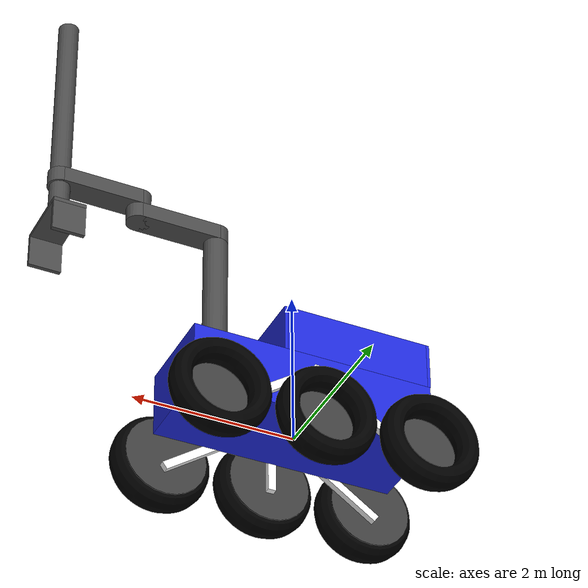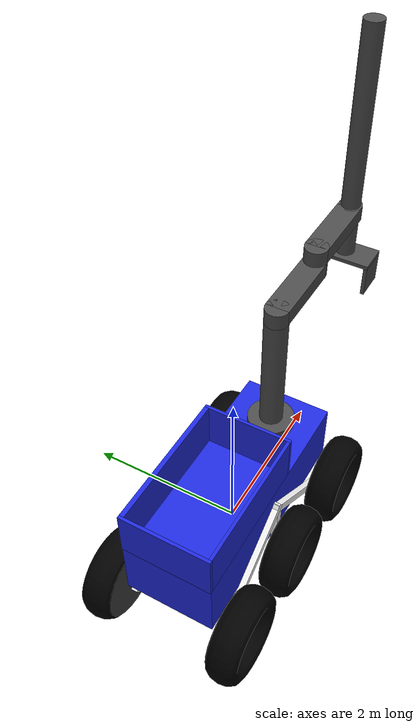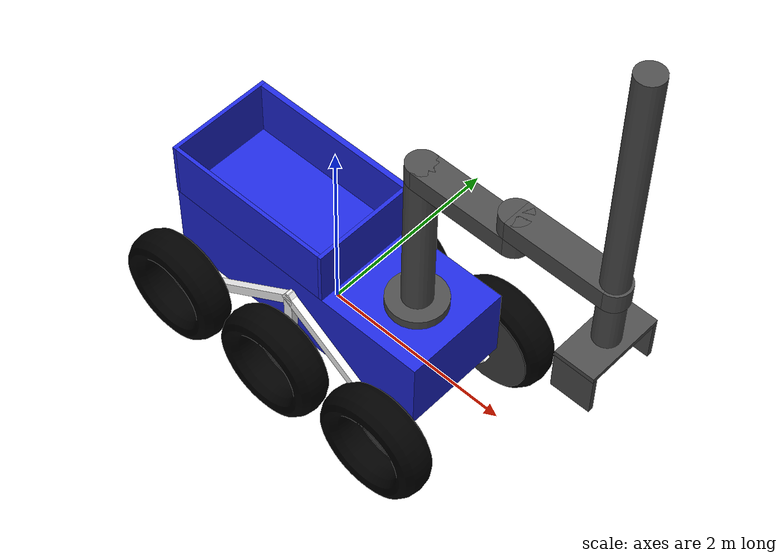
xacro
<?xml version="1.0"?>

<robot name="rover" xmlns:xacro="http://wiki.ros.org/xacro">

  <!--  includes  -->
  <xacro:include filename="$(find robot_rover)/urdf/utils/utils.urdf.xacro"/>
  <xacro:include filename="$(find robot_rover)/urdf/base/robot_base.urdf.xacro"/>
  <xacro:include filename="$(find robot_rover)/urdf/wheels/rover_wheel.urdf.xacro"/>
  <xacro:include filename="$(find robot_rover)/urdf/arm/scara.urdf.xacro"/>
  <xacro:include filename="$(find robot_rover)/urdf/arm/gripper.urdf.xacro"/>
  <xacro:include filename="$(find robot_rover)/urdf/sensors/camera.urdf.xacro"/>
  <xacro:include filename="$(find robot_rover)/urdf/sensors/imu_sensor.urdf.xacro"/>

  <!-- Propiedades -->
  <xacro:property name="front_camera_offset_x" value="1.55000"/>
  <xacro:property name="front_camera_offset_y" value="0.00000"/>
  <xacro:property name="front_camera_offset_z" value="0.50000"/>
  <xacro:property name="arm_camera_offset_x" value="0.00000"/>
  <xacro:property name="arm_camera_offset_y" value="0.00000"/>
  <xacro:property name="arm_camera_offset_z" value="-0.57500"/>

  <!--  argumentos  -->
  <xacro:arg name="robot_ns" default=""/>
  <xacro:arg name="prefix" default=""/>

  <!--  Robot Parts  -->

  <!--  Utils  -->
  <xacro:utils/>

  <!--  Base  -->
  <xacro:robot_base/>

  <!--  Wheels  -->
  <xacro:rover_wheel parent="base_link">
  </xacro:rover_wheel>

  <!--  Arm  -->
  <xacro:scara parent="base_link">
  </xacro:scara>
  <xacro:gripper parent="arm_link3_link_T">
  </xacro:gripper>

  <!--  sensores  -->
  <xacro:camera node_name="front_camera" frame_prefix="front_camera" parent="base_link">
    <origin xyz="${front_camera_offset_x} ${front_camera_offset_y} ${front_camera_offset_z}" rpy="0 0 1.57080"/>
  </xacro:camera>

  <xacro:camera node_name="arm_camera" frame_prefix="arm_camera" parent="arm_base_fingers_link_R" >
    <origin xyz="${arm_camera_offset_x} ${arm_camera_offset_y} ${arm_camera_offset_z}" rpy="0 1.57080 0"/>
  </xacro:camera>

  <xacro:imu_sensor parent="base_link">
    <origin xyz="0.0 0.0 0.0" rpy="0 0 0"/>
  </xacro:imu_sensor>

  <!--  Gazebo ROS control plugins  -->
  <xacro:include filename="$(find robot_rover)/urdf/ros2_control.urdf.xacro"/>
  <xacro:arg name="config_controllers" default="$(find robot_rover)/config/rover_controllers.yaml"/>
  <xacro:arg name="update_rate" default="20"/>
  <xacro:ros2_control/>

</robot>

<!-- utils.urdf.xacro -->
<robot name="rover" xmlns:xacro="http://wiki.ros.org/xacro">
  <xacro:macro name="utils">

    <material name="Material">
      <color rgba="0.00000 0.00000 0.00000 1.00000"/>
    </material>
    <material name="Material.black">
      <color rgba="0.00000 0.00000 0.00000 1.00000"/>
    </material>
    <material name="Material.white">
      <color rgba="1.00000 1.00000 1.00000 1.00000"/>
    </material>
    <material name="Material.gray">
      <color rgba="0.29804 0.29804 0.29804 1.00000"/>
    </material>
    <material name="Material.blue">
      <color rgba="0.12353 0.16275 0.86667 1.00000"/>
    </material>
    <material name="Material.gray2">
      <color rgba="0.24706 0.24706 0.24706 1.00000"/>
    </material>

  </xacro:macro>
</robot>

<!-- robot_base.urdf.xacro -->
<robot name="rover" xmlns:xacro="http://wiki.ros.org/xacro">
  <xacro:macro name="robot_base">

    <joint name="18_wall1_joint" type="fixed">
      <origin rpy="0.00000 0.00000 0.00000" xyz="0.35000 0.00000 0.90000"/>
      <parent link="base_link"/>
      <child link="wall1_link"/>
    </joint>
    <joint name="18_wall2_joint" type="fixed">
      <origin rpy="0.00000 0.00000 0.00000" xyz="-0.57000 -0.54500 0.90000"/>
      <parent link="base_link"/>
      <child link="wall2_link"/>
    </joint>
    <joint name="18_wall3_joint" type="fixed">
      <origin rpy="0.00000 0.00000 0.00000" xyz="-1.48000 0.00000 0.90000"/>
      <parent link="base_link"/>
      <child link="wall3_link"/>
    </joint>
    <joint name="18_wall4_joint" type="fixed">
      <origin rpy="0.00000 0.00000 0.00000" xyz="-0.57000 0.54500 0.90000"/>
      <parent link="base_link"/>
      <child link="wall4_link"/>
    </joint>
    <joint name="base_link_joint" type="fixed">
      <origin rpy="0.00000 0.00000 0.00000" xyz="0.00000 0.00000 0.20000"/>
      <parent link="base_footprint"/>
      <child link="base_link"/>
    </joint>
    <link name="base_footprint"/>
    <link name="base_link">
      <collision name="base_collision">
        <origin rpy="0.00000 0.00000 0.00000" xyz="0.00000 0.00000 0.20000"/>
        <geometry>
          <box size="3.00000 1.15000 0.80000"/>
        </geometry>
      </collision>
      <inertial>
        <inertia ixx="15.48333" ixy="0.00000" ixz="0.00000" iyy="66.66667" iyz="0.00000" izz="68.81667"/>
        <origin rpy="0.00000 0.00000 0.00000" xyz="0.00000 0.00000 0.10000"/>
        <mass value="80.00000"/>
      </inertial>
      <visual name="base">
        <origin rpy="0.00000 0.00000 0.00000" xyz="0.00000 0.00000 0.20000"/>
        <material name="Material.blue"/>
        <geometry>
          <box size="3.00000 1.15000 0.80000"/>
        </geometry>
      </visual>
    </link>
    <link name="wall1_link">
      <collision name="wall1_collision">
        <origin rpy="0.00000 0.00000 0.00000" xyz="-0.00000 0.00000 -0.00000"/>
        <geometry>
          <box size="0.04000 1.15000 0.60000"/>
        </geometry>
      </collision>
      <inertial>
        <inertia ixx="0.42062" ixy="0.00000" ixz="0.00000" iyy="0.09040" iyz="0.00000" izz="0.33102"/>
        <origin rpy="0.00000 0.00000 0.00000" xyz="-0.00000 0.00000 -0.00000"/>
        <mass value="3.00000"/>
      </inertial>
      <visual name="wall1">
        <origin rpy="0.00000 0.00000 0.00000" xyz="0.00000 0.00000 -0.00000"/>
        <material name="Material.blue"/>
        <geometry>
          <box size="0.04000 1.15000 0.60000"/>
        </geometry>
      </visual>
    </link>
    <link name="wall2_link">
      <collision name="wall2_collision">
        <origin rpy="0.00000 0.00000 0.00000" xyz="0.00000 -0.01000 -0.00000"/>
        <geometry>
          <box size="1.80000 0.04000 0.60000"/>
        </geometry>
      </collision>
      <inertial>
        <inertia ixx="0.15067" ixy="0.00000" ixz="0.00000" iyy="1.48504" iyz="0.00000" izz="1.33571"/>
        <origin rpy="0.00000 0.00000 0.00000" xyz="0.00000 -0.01000 -0.00000"/>
        <mass value="5.00000"/>
      </inertial>
      <visual name="wall2">
        <origin rpy="0.00000 0.00000 0.00000" xyz="0.00000 -0.01000 -0.00000"/>
        <material name="Material.blue"/>
        <geometry>
          <box size="1.80000 0.04000 0.60000"/>
        </geometry>
      </visual>
    </link>
    <link name="wall3_link">
      <collision name="wall3_collision">
        <origin rpy="0.00000 0.00000 0.00000" xyz="-0.01000 0.00000 -0.00000"/>
        <geometry>
          <box size="0.04000 1.15000 0.60000"/>
        </geometry>
      </collision>
      <inertial>
        <inertia ixx="0.42062" ixy="0.00000" ixz="0.00000" iyy="0.09040" iyz="0.00000" izz="0.33102"/>
        <origin rpy="0.00000 0.00000 0.00000" xyz="-0.01000 0.00000 -0.00000"/>
        <mass value="3.00000"/>
      </inertial>
      <visual name="wall3">
        <origin rpy="0.00000 0.00000 0.00000" xyz="-0.01000 0.00000 -0.00000"/>
        <material name="Material.blue"/>
        <geometry>
          <box size="0.04000 1.15000 0.60000"/>
        </geometry>
      </visual>
    </link>
    <link name="wall4_link">
      <collision name="wall4_collision">
        <origin rpy="0.00000 0.00000 0.00000" xyz="0.00000 -0.00000 -0.00000"/>
        <geometry>
          <box size="1.80000 0.06000 0.60000"/>
        </geometry>
      </collision>
      <inertial>
        <inertia ixx="0.15150" ixy="0.00000" ixz="0.00000" iyy="1.48504" iyz="0.00000" izz="1.33654"/>
        <origin rpy="0.00000 0.00000 0.00000" xyz="0.00000 -0.00000 -0.00000"/>
        <mass value="5.00000"/>
      </inertial>
      <visual name="wall4">
        <origin rpy="0.00000 0.00000 0.00000" xyz="0.00000 -0.00000 -0.00000"/>
        <material name="Material.blue"/>
        <geometry>
          <box size="1.80000 0.06000 0.60000"/>
        </geometry>
      </visual>
    </link>

  </xacro:macro>
</robot>

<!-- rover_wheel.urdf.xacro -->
<robot name="rover" xmlns:xacro="http://wiki.ros.org/xacro">
  <xacro:macro name="rover_wheel" params="parent">

    <joint name="12_link_wheel_front_right_joint" type="fixed">
      <origin rpy="0.00000 0.61087 0.00000" xyz="0.65000 -0.61000 -0.10000"/>
      <parent link="${parent}"/>
      <child link="link_wheel_front_right_link"/>
    </joint>
    <joint name="13_link_wheel_front_left_link_joint" type="fixed">
      <origin rpy="0.00000 0.61087 0.00000" xyz="0.65000 0.61000 -0.10000"/>
      <parent link="${parent}"/>
      <child link="link_wheel_front_left_link"/>
    </joint>
    <joint name="14_link_wheel_middle_right_joint" type="fixed">
      <origin rpy="1.57080 1.57080 0.00000" xyz="0.00000 -0.61000 -0.10000"/>
      <parent link="${parent}"/>
      <child link="link_wheel_middle_right_link"/>
    </joint>
    <joint name="15_link_wheel_middle_left_joint" type="fixed">
      <origin rpy="-1.57080 1.57080 0.00000" xyz="0.00000 0.61000 -0.10000"/>
      <parent link="${parent}"/>
      <child link="link_wheel_middle_left_link"/>
    </joint>
    <joint name="16_link_wheel_back_right_joint" type="fixed">
      <origin rpy="0.00000 -0.61087 0.00000" xyz="-0.65000 -0.61000 -0.10000"/>
      <parent link="${parent}"/>
      <child link="link_wheel_back_right_link"/>
    </joint>
    <joint name="17_link_wheel_back_left_joint" type="fixed">
      <origin rpy="0.00000 -0.61087 0.00000" xyz="-0.65000 0.61000 -0.10000"/>
      <parent link="${parent}"/>
      <child link="link_wheel_back_left_link"/>
    </joint>
    <joint name="21_wheel_cover_front_right_joint" type="continuous">
      <limit lower="0.00000" upper="0.00000" effort="5000.00000" velocity="100.00000"/>
      <origin rpy="-1.57080 0.95993 0.00000" xyz="0.70452 -0.06500 0.12708"/>
      <parent link="link_wheel_front_right_link"/>
      <child link="wheel_cover_front_right_link"/>
      <axis xyz="0.00000 0.00000 1.00000"/>
    </joint>
    <joint name="22_wheel_front_right_joint" type="fixed">
      <origin rpy="-3.14159 -0.00000 -1.57080" xyz="0.00000 -0.00000 -0.17500"/>
      <parent link="wheel_cover_front_right_link"/>
      <child link="wheel_front_right_link"/>
    </joint>
    <joint name="31_wheel_cover_front_left_joint" type="continuous">
      <limit lower="0.00000" upper="0.00000" effort="5000.00000" velocity="100.00000"/>
      <origin rpy="-1.57080 0.95993 0.00000" xyz="0.70452 0.06500 0.12708"/>
      <parent link="link_wheel_front_left_link"/>
      <child link="wheel_cover_front_left_link"/>
      <axis xyz="0.00000 0.00000 1.00000"/>
    </joint>
    <joint name="32_wheel_front_left_joint" type="fixed">
      <origin rpy="-3.14159 -0.00000 -1.57080" xyz="0.00000 0.00000 0.17500"/>
      <parent link="wheel_cover_front_left_link"/>
      <child link="wheel_front_left_link"/>
    </joint>
    <joint name="41_wheel_cover_middle_right_joint" type="continuous">
      <limit lower="0.00000" upper="0.00000" effort="5000.00000" velocity="100.00000"/>
      <origin rpy="-3.14159 -0.00000 0.00000" xyz="0.30000 0.00000 0.06500"/>
      <parent link="link_wheel_middle_right_link"/>
      <child link="wheel_cover_middle_right_link"/>
      <axis xyz="0.00000 0.00000 1.00000"/>
    </joint>
    <joint name="42_wheel_middle_right_joint" type="fixed">
      <origin rpy="-3.14159 -0.00000 -1.57080" xyz="-0.00000 -0.00000 -0.17500"/>
      <parent link="wheel_cover_middle_right_link"/>
      <child link="wheel_middle_right_link"/>
    </joint>
    <joint name="51_wheel_cover_middle_left_joint" type="continuous">
      <limit lower="0.00000" upper="0.00000" effort="5000.00000" velocity="100.00000"/>
      <origin rpy="0.00000 0.00000 0.00000" xyz="0.30000 0.00000 0.06500"/>
      <parent link="link_wheel_middle_left_link"/>
      <child link="wheel_cover_middle_left_link"/>
      <axis xyz="0.00000 0.00000 1.00000"/>
    </joint>
    <joint name="52_wheel_middle_left_joint" type="fixed">
      <origin rpy="-3.14159 -0.00000 -1.57080" xyz="-0.00000 0.00000 0.17500"/>
      <parent link="wheel_cover_middle_left_link"/>
      <child link="wheel_middle_left_link"/>
    </joint>
    <joint name="61_wheel_cover_back_right_joint" type="continuous">
      <limit lower="0.00000" upper="0.00000" effort="5000.00000" velocity="100.00000"/>
      <origin rpy="1.57080 0.95993 3.14159" xyz="-0.70452 -0.06500 0.12708"/>
      <parent link="link_wheel_back_right_link"/>
      <child link="wheel_cover_back_right_link"/>
      <axis xyz="0.00000 0.00000 1.00000"/>
    </joint>
    <joint name="62_wheel_back_right_joint" type="fixed">
      <origin rpy="-3.14159 -0.00000 -1.57080" xyz="-0.00000 0.00000 -0.17500"/>
      <parent link="wheel_cover_back_right_link"/>
      <child link="wheel_back_right_link"/>
    </joint>
    <joint name="71_wheel_cover_back_left_joint" type="continuous">
      <limit lower="0.00000" upper="0.00000" effort="5000.00000" velocity="100.00000"/>
      <origin rpy="1.57080 0.95993 -3.14159" xyz="-0.70452 0.06500 0.12708"/>
      <parent link="link_wheel_back_left_link"/>
      <child link="wheel_cover_back_left_link"/>
      <axis xyz="0.00000 0.00000 1.00000"/>
    </joint>
    <joint name="72_wheel_back_left_joint" type="fixed">
      <origin rpy="-3.14159 -0.00000 -1.57080" xyz="0.00000 -0.00000 0.17500"/>
      <parent link="wheel_cover_back_left_link"/>
      <child link="wheel_back_left_link"/>
    </joint>
    <link name="link_wheel_back_left_link">
      <collision name="link_wheel_back_left_collision">
        <origin rpy="0.00000 0.00000 0.00000" xyz="0.00000 -0.00000 -0.00000"/>
        <geometry>
          <box size="1.70000 0.08000 0.10000"/>
        </geometry>
      </collision>
      <inertial>
        <inertia ixx="0.48195" ixy="0.00000" ixz="-0.67658" iyy="1.45000" iyz="0.00000" izz="0.97445"/>
        <origin rpy="0.00000 0.00000 0.00000" xyz="0.00000 -0.00000 -0.00000"/>
        <mass value="6.00000"/>
      </inertial>
      <visual name="link_wheel_back_left">
        <origin rpy="0.00000 0.00000 0.00000" xyz="-0.00000 0.00000 -0.00000"/>
        <material name="Material.white"/>
        <geometry>
          <box size="1.70000 0.08000 0.10000"/>
        </geometry>
      </visual>
    </link>
    <link name="link_wheel_back_right_link">
      <collision name="link_wheel_back_right_collision">
        <origin rpy="0.00000 0.00000 0.00000" xyz="0.00000 0.00000 -0.00000"/>
        <geometry>
          <box size="1.70000 0.08000 0.10000"/>
        </geometry>
      </collision>
      <inertial>
        <inertia ixx="0.48195" ixy="0.00000" ixz="-0.67658" iyy="1.45000" iyz="0.00000" izz="0.97445"/>
        <origin rpy="0.00000 0.00000 0.00000" xyz="0.00000 0.00000 -0.00000"/>
        <mass value="6.00000"/>
      </inertial>
      <visual name="link_wheel_back_right">
        <origin rpy="0.00000 0.00000 0.00000" xyz="-0.00000 -0.00000 -0.00000"/>
        <material name="Material.white"/>
        <geometry>
          <box size="1.70000 0.08000 0.10000"/>
        </geometry>
      </visual>
    </link>
    <link name="link_wheel_front_left_link">
      <collision name="link_wheel_front_left_collision">
        <origin rpy="0.00000 -0.00000 0.00000" xyz="-0.00000 -0.00000 -0.00000"/>
        <geometry>
          <box size="1.70000 0.08000 0.10000"/>
        </geometry>
      </collision>
      <inertial>
        <inertia ixx="0.48195" ixy="0.00000" ixz="0.67658" iyy="1.45000" iyz="0.00000" izz="0.97445"/>
        <origin rpy="0.00000 0.00000 0.00000" xyz="-0.00000 -0.00000 -0.00000"/>
        <mass value="6.00000"/>
      </inertial>
      <visual name="link_wheel_front_left">
        <origin rpy="0.00000 -0.00000 0.00000" xyz="0.00000 0.00000 -0.00000"/>
        <material name="Material.white"/>
        <geometry>
          <box size="1.70000 0.08000 0.10000"/>
        </geometry>
      </visual>
    </link>
    <link name="link_wheel_front_right_link">
      <collision name="link_wheel_front_right_collision">
        <origin rpy="0.00000 -0.00000 0.00000" xyz="-0.00000 0.00000 -0.00000"/>
        <geometry>
          <box size="1.70000 0.08000 0.10000"/>
        </geometry>
      </collision>
      <inertial>
        <inertia ixx="0.48195" ixy="0.00000" ixz="0.67658" iyy="1.45000" iyz="0.00000" izz="0.97445"/>
        <origin rpy="0.00000 0.00000 0.00000" xyz="-0.00000 0.00000 -0.00000"/>
        <mass value="6.00000"/>
      </inertial>
      <visual name="link_wheel_front_right">
        <origin rpy="0.00000 -0.00000 0.00000" xyz="0.00000 -0.00000 -0.00000"/>
        <material name="Material.white"/>
        <geometry>
          <box size="1.70000 0.08000 0.10000"/>
        </geometry>
      </visual>
    </link>
    <link name="link_wheel_middle_left_link">
      <collision name="link_wheel_middle_left_collision">
        <origin rpy="1.57080 0.00000 -0.00000" xyz="0.00000 0.00000 0.00000"/>
        <geometry>
          <box size="0.90000 0.08000 0.10000"/>
        </geometry>
      </collision>
      <inertial>
        <inertia ixx="0.20410" ixy="0.00000" ixz="0.00000" iyy="0.20500" iyz="0.00000" izz="0.00410"/>
        <origin rpy="0.00000 0.00000 0.00000" xyz="0.00000 0.00000 0.00000"/>
        <mass value="3.00000"/>
      </inertial>
      <visual name="link_wheel_middle_left">
        <origin rpy="1.57080 0.00000 0.00000" xyz="0.00000 0.00000 0.00000"/>
        <material name="Material.white"/>
        <geometry>
          <box size="0.90000 0.08000 0.10000"/>
        </geometry>
      </visual>
    </link>
    <link name="link_wheel_middle_right_link">
      <collision name="link_wheel_middle_right_collision">
        <origin rpy="-1.57080 -0.00000 0.00000" xyz="0.00000 -0.00000 0.00000"/>
        <geometry>
          <box size="0.90000 0.08000 0.10000"/>
        </geometry>
      </collision>
      <inertial>
        <inertia ixx="0.20410" ixy="0.00000" ixz="0.00000" iyy="0.20500" iyz="0.00000" izz="0.00410"/>
        <origin rpy="0.00000 0.00000 0.00000" xyz="0.00000 0.00000 0.00000"/>
        <mass value="3.00000"/>
      </inertial>
      <visual name="link_wheel_middle_right">
        <origin rpy="-1.57080 0.00000 0.00000" xyz="0.00000 0.00000 0.00000"/>
        <material name="Material.white"/>
        <geometry>
          <box size="0.90000 0.08000 0.10000"/>
        </geometry>
      </visual>
    </link>
    <link name="wheel_back_left_link">
      <collision name="wheel_back_left_collision">
        <origin rpy="0.00000 0.00000 0.00000" xyz="-0.00000 0.00000 -0.00000"/>
        <geometry>
          <mesh filename="file://$(find robot_rover)/meshes/dae/Torus.010.dae" scale="0.48000 0.48000 0.80000"/>
        </geometry>
        <surface>
          <friction>
            <ode>
              <mu>1.00000</mu>
              <mu2>1.00000</mu2>
              <fdir1>0.00000 0.00000 1.00000</fdir1>
              <slip1>0.0005</slip1>
              <slip2>0.0005</slip2>
            </ode>
          </friction>
        </surface>
      </collision>
      <inertial>
        <inertia ixx="0.46164" ixy="0.00000" ixz="0.00000" iyy="0.84452" iyz="0.00000" izz="0.46164"/>
        <origin rpy="0.00000 0.00000 0.00000" xyz="0.00000 0.00000 0.00000"/>
        <mass value="5.00000"/>
      </inertial>
      <visual name="wheel_back_left">
        <origin rpy="0.00000 0.00000 0.00000" xyz="0.00000 0.00000 0.00000"/>
        <material name="Material.black"/>
        <geometry>
          <mesh filename="file://$(find robot_rover)/meshes/dae/Torus.010.dae" scale="0.48000 0.48000 0.80000"/>
        </geometry>
      </visual>
    </link>
    <link name="wheel_back_right_link">
      <collision name="wheel_back_right_collision">
        <origin rpy="0.00000 0.00000 -0.00000" xyz="0.00000 -0.00000 0.00000"/>
        <geometry>
          <mesh filename="file://$(find robot_rover)/meshes/dae/Torus.006.dae" scale="0.48000 0.48000 0.80000"/>
        </geometry>
        <surface>
          <friction>
            <ode>
              <mu>1.00000</mu>
              <mu2>1.00000</mu2>
              <fdir1>0.00000 0.00000 1.00000</fdir1>
              <slip1>0.0005</slip1>
              <slip2>0.0005</slip2>
            </ode>
          </friction>
        </surface>
      </collision>
      <inertial>
        <inertia ixx="0.46164" ixy="0.00000" ixz="0.00000" iyy="0.84452" iyz="0.00000" izz="0.46164"/>
        <origin rpy="0.00000 0.00000 0.00000" xyz="0.00000 -0.00000 0.00000"/>
        <mass value="5.00000"/>
      </inertial>
      <visual name="wheel_back_right">
        <origin rpy="0.00000 0.00000 0.00000" xyz="0.00000 0.00000 0.00000"/>
        <material name="Material.black"/>
        <geometry>
          <mesh filename="file://$(find robot_rover)/meshes/dae/Torus.006.dae" scale="0.48000 0.48000 0.80000"/>
        </geometry>
      </visual>
    </link>
    <link name="wheel_cover_back_left_link">
      <collision name="wheel_cover_back_left_collision">
        <origin rpy="-0.00000 0.00000 0.00000" xyz="0.00000 0.00000 -0.00000"/>
        <geometry>
          <cylinder radius="0.50000" length="0.05000"/>
        </geometry>
      </collision>
      <inertial>
        <inertia ixx="0.01881" ixy="0.00000" ixz="0.00000" iyy="0.03750" iyz="0.00000" izz="0.01881"/>
        <origin rpy="0.00000 0.00000 0.00000" xyz="0.00000 0.00000 -0.00000"/>
        <mass value="0.30000"/>
      </inertial>
      <visual name="wheel_cover_back_left">
        <origin rpy="-0.00000 0.00000 0.00000" xyz="-0.00000 0.00000 -0.00000"/>
        <material name="Material.gray2"/>
        <geometry>
          <cylinder radius="0.50000" length="0.05000"/>
        </geometry>
      </visual>
    </link>
    <link name="wheel_cover_back_right_link">
      <collision name="wheel_cover_back_right_collision">
        <origin rpy="-0.00000 0.00000 0.00000" xyz="-0.00000 -0.00000 0.00000"/>
        <geometry>
          <cylinder radius="0.50000" length="0.05000"/>
        </geometry>
      </collision>
      <inertial>
        <inertia ixx="0.01881" ixy="0.00000" ixz="0.00000" iyy="0.03750" iyz="0.00000" izz="0.01881"/>
        <origin rpy="0.00000 0.00000 0.00000" xyz="-0.00000 -0.00000 0.00000"/>
        <mass value="0.30000"/>
      </inertial>
      <visual name="wheel_cover_back_right">
        <origin rpy="-0.00000 0.00000 0.00000" xyz="0.00000 0.00000 0.00000"/>
        <material name="Material.gray2"/>
        <geometry>
          <cylinder radius="0.50000" length="0.05000"/>
        </geometry>
      </visual>
    </link>
    <link name="wheel_cover_front_left_link">
      <collision name="wheel_cover_front_left_collision">
        <origin rpy="-0.00000 0.00000 0.00000" xyz="0.00000 0.00000 -0.00000"/>
        <geometry>
          <cylinder radius="0.50000" length="0.05000"/>
        </geometry>
      </collision>
      <inertial>
        <inertia ixx="0.01881" ixy="0.00000" ixz="0.00000" iyy="0.03750" iyz="0.00000" izz="0.01881"/>
        <origin rpy="0.00000 0.00000 0.00000" xyz="0.00000 0.00000 -0.00000"/>
        <mass value="0.30000"/>
      </inertial>
      <visual name="wheel_cover_front_left">
        <origin rpy="-0.00000 0.00000 -0.00000" xyz="0.00000 -0.00000 0.00000"/>
        <material name="Material.gray2"/>
        <geometry>
          <cylinder radius="0.50000" length="0.05000"/>
        </geometry>
      </visual>
    </link>
    <link name="wheel_cover_front_right_link">
      <collision name="wheel_cover_front_right_collision">
        <origin rpy="-0.00000 0.00000 0.00000" xyz="-0.00000 0.00000 0.00000"/>
        <geometry>
          <cylinder radius="0.50000" length="0.05000"/>
        </geometry>
      </collision>
      <inertial>
        <inertia ixx="0.01881" ixy="0.00000" ixz="0.00000" iyy="0.03750" iyz="0.00000" izz="0.01881"/>
        <origin rpy="0.00000 0.00000 0.00000" xyz="-0.00000 0.00000 0.00000"/>
        <mass value="0.30000"/>
      </inertial>
      <visual name="wheel_cover_front_right">
        <origin rpy="0.00000 0.00000 0.00000" xyz="0.00000 0.00000 0.00000"/>
        <material name="Material.gray2"/>
        <geometry>
          <cylinder radius="0.50000" length="0.05000"/>
        </geometry>
      </visual>
    </link>
    <link name="wheel_cover_middle_left_link">
      <collision name="wheel_cover_middle_left_collision">
        <origin rpy="-0.00000 0.00000 0.00000" xyz="0.00000 0.00000 0.00000"/>
        <geometry>
          <cylinder radius="0.50000" length="0.05000"/>
        </geometry>
      </collision>
      <inertial>
        <inertia ixx="0.01881" ixy="-0.00000" ixz="0.00000" iyy="0.03750" iyz="0.00000" izz="0.01881"/>
        <origin rpy="0.00000 0.00000 0.00000" xyz="-0.00000 0.00000 0.00000"/>
        <mass value="0.30000"/>
      </inertial>
      <visual name="wheel_cover_middle_left">
        <origin rpy="-0.00000 0.00000 -0.00000" xyz="0.00000 -0.00000 0.00000"/>
        <material name="Material.gray2"/>
        <geometry>
          <cylinder radius="0.50000" length="0.05000"/>
        </geometry>
      </visual>
    </link>
    <link name="wheel_cover_middle_right_link">
      <collision name="wheel_cover_middle_right_collision">
        <origin rpy="-0.00000 0.00000 0.00000" xyz="0.00000 0.00000 0.00000"/>
        <geometry>
          <cylinder radius="0.50000" length="0.05000"/>
        </geometry>
      </collision>
      <inertial>
        <inertia ixx="0.01881" ixy="-0.00000" ixz="0.00000" iyy="0.03750" iyz="0.00000" izz="0.01881"/>
        <origin rpy="0.00000 0.00000 0.00000" xyz="0.00000 0.00000 0.00000"/>
        <mass value="0.30000"/>
      </inertial>
      <visual name="wheel_cover_middle_right">
        <origin rpy="0.00000 0.00000 -0.00000" xyz="-0.00000 -0.00000 -0.00000"/>
        <material name="Material.gray2"/>
        <geometry>
          <cylinder radius="0.50000" length="0.05000"/>
        </geometry>
      </visual>
    </link>
    <link name="wheel_front_left_link">
      <collision name="wheel_front_left_collision">
        <origin rpy="0.00000 0.00000 -0.00000" xyz="0.00000 0.00000 -0.00000"/>
        <geometry>
          <mesh filename="file://$(find robot_rover)/meshes/dae/Torus.008.dae" scale="0.48000 0.48000 0.80000"/>
        </geometry>
        <surface>
          <friction>
            <ode>
              <mu>1.00000</mu>
              <mu2>1.00000</mu2>
              <fdir1>0.00000 0.00000 1.00000</fdir1>
              <slip1>0.0005</slip1>
              <slip2>0.0005</slip2>
            </ode>
          </friction>
        </surface>
      </collision>
      <inertial>
        <inertia ixx="0.46164" ixy="0.00000" ixz="0.00000" iyy="0.84452" iyz="0.00000" izz="0.46164"/>
        <origin rpy="0.00000 0.00000 0.00000" xyz="-0.00000 0.00000 0.00000"/>
        <mass value="5.00000"/>
      </inertial>
      <visual name="wheel_front_left">
        <origin rpy="0.00000 0.00000 0.00000" xyz="-0.00000 -0.00000 0.00000"/>
        <material name="Material.black"/>
        <geometry>
          <mesh filename="file://$(find robot_rover)/meshes/dae/Torus.008.dae" scale="0.48000 0.48000 0.80000"/>
        </geometry>
      </visual>
    </link>
    <link name="wheel_front_right_link">
      <collision name="wheel_front_right_collision">
        <origin rpy="0.00000 0.00000 -0.00000" xyz="0.00000 -0.00000 0.00000"/>
        <geometry>
          <mesh filename="file://$(find robot_rover)/meshes/dae/Torus.007.dae" scale="0.48000 0.48000 0.80000"/>
        </geometry>
        <surface>
          <friction>
            <ode>
              <mu>1.00000</mu>
              <mu2>1.00000</mu2>
              <fdir1>0.00000 0.00000 1.00000</fdir1>
              <slip1>0.0005</slip1>
              <slip2>0.0005</slip2>
            </ode>
          </friction>
        </surface>
      </collision>
      <inertial>
        <inertia ixx="0.46164" ixy="0.00000" ixz="0.00000" iyy="0.84452" iyz="0.00000" izz="0.46164"/>
        <origin rpy="0.00000 0.00000 0.00000" xyz="0.00000 -0.00000 0.00000"/>
        <mass value="5.00000"/>
      </inertial>
      <visual name="wheel_front_right">
        <origin rpy="0.00000 0.00000 -0.00000" xyz="0.00000 0.00000 0.00000"/>
        <material name="Material.black"/>
        <geometry>
          <mesh filename="file://$(find robot_rover)/meshes/dae/Torus.007.dae" scale="0.48000 0.48000 0.80000"/>
        </geometry>
      </visual>
    </link>
    <link name="wheel_middle_left_link">
      <collision name="wheel_middle_left_collision">
        <origin rpy="-0.00000 0.00000 -0.00000" xyz="0.00000 -0.00000 0.00000"/>
        <geometry>
          <mesh filename="file://$(find robot_rover)/meshes/dae/Torus.009.dae" scale="0.48000 0.48000 0.80000"/>
        </geometry>
        <surface>
          <friction>
            <ode>
              <mu>1.00000</mu>
              <mu2>1.00000</mu2>
              <fdir1>0.00000 0.00000 1.00000</fdir1>
              <slip1>0.0005</slip1>
              <slip2>0.0005</slip2>
            </ode>
          </friction>
        </surface>
      </collision>
      <inertial>
        <inertia ixx="0.46164" ixy="0.00000" ixz="0.00000" iyy="0.84452" iyz="0.00000" izz="0.46164"/>
        <origin rpy="0.00000 0.00000 0.00000" xyz="0.00000 0.00000 -0.00000"/>
        <mass value="5.00000"/>
      </inertial>
      <visual name="wheel_middle_left">
        <origin rpy="-0.00000 0.00000 0.00000" xyz="0.00000 -0.00000 -0.00000"/>
        <material name="Material.black"/>
        <geometry>
          <mesh filename="file://$(find robot_rover)/meshes/dae/Torus.009.dae" scale="0.48000 0.48000 0.80000"/>
        </geometry>
      </visual>
    </link>
    <link name="wheel_middle_right_link">
      <collision name="wheel_middle_right_collision">
        <origin rpy="0.00000 0.00000 0.00000" xyz="0.00000 0.00000 -0.00000"/>
        <geometry>
          <mesh filename="file://$(find robot_rover)/meshes/dae/Torus.001.dae" scale="0.48000 0.48000 0.80000"/>
        </geometry>
        <surface>
          <friction>
            <ode>
              <mu>1.00000</mu>
              <mu2>1.00000</mu2>
              <fdir1>0.00000 0.00000 1.00000</fdir1>
              <slip1>0.0005</slip1>
              <slip2>0.0005</slip2>
            </ode>
          </friction>
        </surface>
      </collision>
      <inertial>
        <inertia ixx="0.46164" ixy="0.00000" ixz="0.00000" iyy="0.84452" iyz="0.00000" izz="0.46164"/>
        <origin rpy="0.00000 0.00000 0.00000" xyz="0.00000 -0.00000 0.00000"/>
        <mass value="5.00000"/>
      </inertial>
      <visual name="wheel_middle_right">
        <origin rpy="0.00000 0.00000 0.00000" xyz="0.00000 0.00000 0.00000"/>
        <material name="Material"/>
        <geometry>
          <mesh filename="file://$(find robot_rover)/meshes/dae/Torus.001.dae" scale="0.48000 0.48000 0.80000"/>
        </geometry>
      </visual>
    </link>

    <!-- Transmission is important to link the joints and the controller (see config/rover_controller.yaml)-->
    <transmission name="back_right_wheel_joint_trans">
      <type>transmission_interface/SimpleTransmission</type>
      <joint name="61_wheel_cover_back_right_joint">
        <hardwareInterface>hardware_interface/VelocityJointInterface</hardwareInterface>
      </joint>
      <actuator name="back_right_wheel_joint_motor">
        <mechanicalReduction>1</mechanicalReduction>
      </actuator>
    </transmission>
    <gazebo reference="wheel_cover_back_right_link">
      <mu1>5</mu1>
      <mu2>5</mu2>
    </gazebo>

    <transmission name="back_left_wheel_joint_trans">
      <type>transmission_interface/SimpleTransmission</type>
      <joint name="71_wheel_cover_back_left_joint">
        <hardwareInterface>hardware_interface/VelocityJointInterface</hardwareInterface>
      </joint>
      <actuator name="back_left_wheel_joint_motor">
        <mechanicalReduction>1</mechanicalReduction>
      </actuator>
    </transmission>
    <gazebo reference="wheel_cover_back_left_link">
      <mu1>5</mu1>
      <mu2>5</mu2>
    </gazebo>

    <transmission name="middle_right_wheel_joint_trans">
      <type>transmission_interface/SimpleTransmission</type>
      <joint name="41_wheel_cover_middle_right_joint">
        <hardwareInterface>hardware_interface/VelocityJointInterface</hardwareInterface>
      </joint>
      <actuator name="middle_right_wheel_joint_motor">
        <mechanicalReduction>1</mechanicalReduction>
      </actuator>
    </transmission>
    <gazebo reference="wheel_cover_middle_right_link">
      <mu1>5</mu1>
      <mu2>5</mu2>
    </gazebo>

    <transmission name="middle_left_wheel_joint_trans">
      <type>transmission_interface/SimpleTransmission</type>
      <joint name="51_wheel_cover_middle_left_joint">
        <hardwareInterface>hardware_interface/VelocityJointInterface</hardwareInterface>
      </joint>
      <actuator name="middle_left_wheel_joint_motor">
        <mechanicalReduction>1</mechanicalReduction>
      </actuator>
    </transmission>
    <gazebo reference="wheel_cover_middle_left_link">
      <mu1>5</mu1>
      <mu2>5</mu2>
    </gazebo>

    <transmission name="front_right_wheel_joint_trans">
      <type>transmission_interface/SimpleTransmission</type>
      <joint name="21_wheel_cover_front_right_joint">
        <hardwareInterface>hardware_interface/VelocityJointInterface</hardwareInterface>
      </joint>
      <actuator name="front_right_wheel_joint_motor">
        <mechanicalReduction>1</mechanicalReduction>
      </actuator>
    </transmission>
    <gazebo reference="wheel_cover_front_right_link">
      <mu1>5</mu1>
      <mu2>5</mu2>
    </gazebo>

    <transmission name="front_left_wheel_joint_trans">
      <type>transmission_interface/SimpleTransmission</type>
      <joint name="31_wheel_cover_front_left_joint">
        <hardwareInterface>hardware_interface/VelocityJointInterface</hardwareInterface>
      </joint>
      <actuator name="front_left_wheel_joint_motor">
        <mechanicalReduction>1</mechanicalReduction>
      </actuator>
    </transmission>
    <gazebo reference="wheel_cover_front_left_link">
      <mu1>5</mu1>
      <mu2>5</mu2>
    </gazebo>

  </xacro:macro>
</robot>

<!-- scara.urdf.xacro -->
<robot name="rover" xmlns:xacro="http://wiki.ros.org/xacro">
  <xacro:macro name="scara" params="parent">

    <joint name="01_arm_base_joint" type="fixed">
      <origin rpy="0.00000 0.00000 0.00000" xyz="1.00000 0.00000 0.65000"/>
      <parent link="${parent}"/>
      <child link="arm_base_link"/>
    </joint>
    <joint name="02_arm_cylinder_joint" type="fixed">
      <origin rpy="0.00000 0.00000 0.00000" xyz="0.00000 0.00000 0.85000"/>
      <parent link="arm_base_link"/>
      <child link="arm_cylinder_link"/>
    </joint>
    <joint name="03_arm_link1_part1_joint" type="revolute">
      <limit lower="-3.14000" upper="3.14000" effort="1000" velocity="100.00000"/>
      <origin rpy="0.00000 0.00000 0.00000" xyz="0.00000 0.00000 0.90000"/>
      <parent link="arm_cylinder_link"/>
      <child link="arm_link1_part1_link_R"/>
      <axis xyz="0.00000 0.00000 1.00000"/>
    </joint>
    <joint name="03_arm_link1_part2_joint" type="fixed">
      <origin rpy="0.00000 0.00000 0.00000" xyz="0.50000 0.00000 0.00000"/>
      <parent link="arm_link1_part1_link_R"/>
      <child link="arm_link1_part2_link"/>
    </joint>
    <joint name="03_arm_link1_part3_joint" type="fixed">
      <origin rpy="0.00000 0.00000 0.00000" xyz="0.50000 0.00000 -0.00000"/>
      <parent link="arm_link1_part2_link"/>
      <child link="arm_link1_part3_link"/>
    </joint>
    <joint name="04_arm_link2_part1_joint" type="revolute">
      <limit lower="-2.20000" upper="2.20000" effort="1000" velocity="100.00000"/>
      <origin rpy="0.00000 0.00000 0.00000" xyz="0.00000 0.00000 0.20000"/>
      <parent link="arm_link1_part3_link"/>
      <child link="arm_link2_part1_link_R"/>
      <axis xyz="0.00000 0.00000 1.00000"/>
    </joint>
    <joint name="04_arm_link2_part2_joint" type="fixed">
      <origin rpy="0.00000 0.00000 0.00000" xyz="0.50000 0.00000 -0.00000"/>
      <parent link="arm_link2_part1_link_R"/>
      <child link="arm_link2_part2_link"/>
    </joint>
    <joint name="04_arm_link2_part3_joint" type="fixed">
      <origin rpy="0.00000 0.00000 0.00000" xyz="0.50000 0.00000 -0.00000"/>
      <parent link="arm_link2_part2_link"/>
      <child link="arm_link2_part3_link"/>
    </joint>
    <joint name="05_arm_link3_T_joint" type="prismatic">
      <limit lower="-2.45000" upper="3.50000" effort="1000" velocity="100.00000"/>
      <origin rpy="0.00000 0.00000 0.00000" xyz="-0.00000 0.00000 -0.60000"/>
      <parent link="arm_link2_part3_link"/>
      <child link="arm_link3_link_T"/>
      <axis xyz="0.00000 0.00000 1.00000"/>
    </joint>
    <link name="arm_base_link">
      <collision name="arm_base_collision">
        <origin rpy="0.00000 0.00000 0.00000" xyz="0.00000 0.00000 -0.00000"/>
        <geometry>
          <cylinder radius="0.30000" length="0.10000"/>
        </geometry>
      </collision>
      <inertial>
        <inertia ixx="0.00583" ixy="0.00000" ixz="0.00000" iyy="0.00583" iyz="0.00000" izz="0.01125"/>
        <origin rpy="0.00000 0.00000 0.00000" xyz="0.00000 0.00000 -0.00000"/>
        <mass value="0.25000"/>
      </inertial>
      <visual name="arm_base">
        <origin rpy="0.00000 0.00000 0.00000" xyz="0.00000 0.00000 -0.00000"/>
        <material name="Material.gray"/>
        <geometry>
          <cylinder radius="0.30000" length="0.10000"/>
        </geometry>
      </visual>
    </link>
    <link name="arm_cylinder_link">
      <collision name="arm_cylinder_collision">
        <origin rpy="0.00000 0.00000 0.00000" xyz="-0.00000 0.00000 -0.00000"/>
        <geometry>
          <cylinder radius="0.15000" length="1.60000"/>
        </geometry>
      </collision>
      <inertial>
        <inertia ixx="0.32844" ixy="0.00000" ixz="0.00000" iyy="0.32844" iyz="0.00000" izz="0.01687"/>
        <origin rpy="0.00000 0.00000 0.00000" xyz="0.00000 0.00000 0.00000"/>
        <mass value="1.50000"/>
      </inertial>
      <visual name="arm_cylinder">
        <origin rpy="0.00000 0.00000 0.00000" xyz="0.00000 0.00000 0.00000"/>
        <material name="Material.gray"/>
        <geometry>
          <cylinder radius="0.15000" length="1.60000"/>
        </geometry>
      </visual>
    </link>
    <link name="arm_link1_part1_link_R">
      <collision name="arm_link1_part1_collision">
        <origin rpy="0.00000 0.00000 0.00000" xyz="-0.00000 0.00000 0.00000"/>
        <geometry>
          <cylinder radius="0.15000" length="0.20000"/>
        </geometry>
      </collision>
      <inertial>
        <inertia ixx="0.00179" ixy="0.00000" ixz="0.00000" iyy="0.00179" iyz="0.00000" izz="0.00225"/>
        <origin rpy="0.00000 0.00000 0.00000" xyz="-0.00000 0.00000 -0.00000"/>
        <mass value="0.20000"/>
      </inertial>
      <visual name="arm_link1_part1">
        <origin rpy="0.00000 0.00000 0.00000" xyz="0.00000 0.00000 0.00000"/>
        <material name="Material.gray"/>
        <geometry>
          <cylinder radius="0.15000" length="0.20000"/>
        </geometry>
      </visual>
    </link>
    <link name="arm_link1_part2_link">
      <collision name="arm_link1_part2_collision">
        <origin rpy="0.00000 0.00000 0.00000" xyz="-0.00000 0.00000 -0.00000"/>
        <geometry>
          <box size="1.00000 0.30000 0.20000"/>
        </geometry>
      </collision>
      <inertial>
        <inertia ixx="0.00650" ixy="0.00000" ixz="0.00000" iyy="0.05200" iyz="0.00000" izz="0.05450"/>
        <origin rpy="0.00000 0.00000 0.00000" xyz="-0.00000 0.00000 0.00000"/>
        <mass value="0.60000"/>
      </inertial>
      <visual name="arm_link1_part2">
        <origin rpy="0.00000 0.00000 0.00000" xyz="-0.00000 0.00000 0.00000"/>
        <material name="Material.gray"/>
        <geometry>
          <box size="1.00000 0.30000 0.20000"/>
        </geometry>
      </visual>
    </link>
    <link name="arm_link1_part3_link">
      <collision name="arm_link1_part3_collision">
        <origin rpy="0.00000 0.00000 0.00000" xyz="-0.00000 0.00000 -0.00000"/>
        <geometry>
          <cylinder radius="0.15000" length="0.20000"/>
        </geometry>
      </collision>
      <inertial>
        <inertia ixx="0.00179" ixy="0.00000" ixz="0.00000" iyy="0.00179" iyz="0.00000" izz="0.00225"/>
        <origin rpy="0.00000 0.00000 0.00000" xyz="0.00000 0.00000 -0.00000"/>
        <mass value="0.20000"/>
      </inertial>
      <visual name="arm_link1_part3">
        <origin rpy="0.00000 0.00000 0.00000" xyz="-0.00000 0.00000 -0.00000"/>
        <material name="Material.gray"/>
        <geometry>
          <cylinder radius="0.15000" length="0.20000"/>
        </geometry>
      </visual>
    </link>
    <link name="arm_link2_part1_link_R">
      <collision name="arm_link2_part1_collision">
        <origin rpy="0.00000 0.00000 0.00000" xyz="0.00000 0.00000 -0.00000"/>
        <geometry>
          <cylinder radius="0.15000" length="0.20000"/>
        </geometry>
      </collision>
      <inertial>
        <inertia ixx="0.00179" ixy="0.00000" ixz="0.00000" iyy="0.00179" iyz="0.00000" izz="0.00225"/>
        <origin rpy="0.00000 0.00000 0.00000" xyz="0.00000 0.00000 0.00000"/>
        <mass value="0.20000"/>
      </inertial>
      <visual name="arm_link2_part1">
        <origin rpy="0.00000 0.00000 0.00000" xyz="0.00000 0.00000 0.00000"/>
        <material name="Material.gray"/>
        <geometry>
          <cylinder radius="0.15000" length="0.20000"/>
        </geometry>
      </visual>
    </link>
    <link name="arm_link2_part2_link">
      <collision name="arm_link2_part2_collision">
        <origin rpy="0.00000 0.00000 0.00000" xyz="-0.00000 0.00000 -0.00000"/>
        <geometry>
          <box size="1.00000 0.30000 0.20000"/>
        </geometry>
      </collision>
      <inertial>
        <inertia ixx="0.00650" ixy="0.00000" ixz="0.00000" iyy="0.05200" iyz="0.00000" izz="0.05450"/>
        <origin rpy="0.00000 0.00000 0.00000" xyz="-0.00000 0.00000 -0.00000"/>
        <mass value="0.60000"/>
      </inertial>
      <visual name="arm_link2_part2">
        <origin rpy="0.00000 0.00000 0.00000" xyz="-0.00000 0.00000 -0.00000"/>
        <material name="Material.gray"/>
        <geometry>
          <box size="1.00000 0.30000 0.20000"/>
        </geometry>
      </visual>
    </link>
    <link name="arm_link2_part3_link">
      <inertial>
        <inertia ixx="0.00179" ixy="0.00000" ixz="0.00000" iyy="0.00179" iyz="0.00000" izz="0.00225"/>
        <origin rpy="0.00000 0.00000 0.00000" xyz="0.00000 0.00000 0.00000"/>
        <mass value="0.20000"/>
      </inertial>
      <visual name="arm_link2_part3">
        <origin rpy="0.00000 0.00000 0.00000" xyz="0.00000 0.00000 -0.00000"/>
        <material name="Material.gray"/>
        <geometry>
          <cylinder radius="0.15000" length="0.20000"/>
        </geometry>
      </visual>
    </link>
    <link name="arm_link3_link_T">
      <collision name="arm_link3_collision">
        <origin rpy="0.00000 0.00000 0.00000" xyz="0.00000 0.00000 1.50000"/>
        <geometry>
          <cylinder radius="0.12500" length="3.00000"/>
        </geometry>
      </collision>
      <inertial>
        <inertia ixx="1.50781" ixy="0.00000" ixz="0.00000" iyy="1.50781" iyz="0.00000" izz="0.01562"/>
        <origin rpy="0.00000 0.00000 0.00000" xyz="-0.00000 0.00000 1.50000"/>
        <mass value="2.00000"/>
      </inertial>
      <visual name="arm_link3">
        <origin rpy="0.00000 0.00000 0.00000" xyz="0.00000 0.00000 1.50000"/>
        <material name="Material.gray"/>
        <geometry>
          <cylinder radius="0.12500" length="3.00000"/>
        </geometry>
      </visual>
    </link>

  </xacro:macro>
</robot>

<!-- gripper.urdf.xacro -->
<robot name="rover" xmlns:xacro="http://wiki.ros.org/xacro">
  <xacro:macro name="gripper" params="parent">

    <joint name="06_arm_base_fingers_R_joint" type="revolute">
      <limit lower="-3.14000" upper="3.14000" effort="1000" velocity="100.00000"/>
      <origin rpy="0.00000 0.00000 0.00000" xyz="0.00000 0.00000 -0.02500"/>
      <parent link="${parent}"/>
      <child link="arm_base_fingers_link_R"/>
      <axis xyz="0.00000 0.00000 1.00000"/>
    </joint>
    <joint name="07_arm_finger_right_joint" type="prismatic">
      <limit lower="0.00000" upper="0.11000" effort="1000" velocity="100.00000"/>
      <origin rpy="0.00000 0.00000 0.00000" xyz="-0.00000 -0.37500 -0.22500"/>
      <parent link="arm_base_fingers_link_R"/>
      <child link="arm_finger_right_link"/>
      <axis xyz="0.00000 1.00000 0.00000"/>
    </joint>
    <joint name="08_arm_finger_left_joint" type="prismatic">
      <limit lower="-0.11000" upper="0.00000" effort="1000" velocity="100.00000"/>
      <origin rpy="0.00000 0.00000 0.00000" xyz="-0.00000 0.37500 -0.22500"/>
      <parent link="arm_base_fingers_link_R"/>
      <child link="arm_finger_left_link"/>
      <axis xyz="0.00000 1.00000 0.00000"/>
    </joint>
    <link name="arm_base_fingers_link_R">
      <collision name="arm_base_fingers_collision">
        <origin rpy="0.00000 0.00000 0.00000" xyz="-0.00000 0.00000 -0.00000"/>
        <geometry>
          <box size="0.40000 0.80000 0.05000"/>
        </geometry>
      </collision>
      <inertial>
        <inertia ixx="0.02677" ixy="0.00000" ixz="0.00000" iyy="0.00677" iyz="0.00000" izz="0.03333"/>
        <origin rpy="0.00000 0.00000 0.00000" xyz="-0.00000 0.00000 -0.00000"/>
        <mass value="0.50000"/>
      </inertial>
      <visual name="arm_base_fingers">
        <origin rpy="0.00000 0.00000 0.00000" xyz="-0.00000 0.00000 0.00000"/>
        <material name="Material.gray"/>
        <geometry>
          <box size="0.40000 0.80000 0.05000"/>
        </geometry>
      </visual>
    </link>
    <link name="arm_finger_left_link">
      <collision name="arm_finger_left_collision">
        <origin rpy="0.00000 0.00000 0.00000" xyz="-0.00000 -0.00000 0.00000"/>
        <geometry>
          <box size="0.40000 0.05000 0.40000"/>
        </geometry>
      </collision>
      <inertial>
        <inertia ixx="0.00406" ixy="0.00000" ixz="0.00000" iyy="0.00800" iyz="0.00000" izz="0.00406"/>
        <origin rpy="0.00000 0.00000 0.00000" xyz="-0.00000 0.00000 -0.00000"/>
        <mass value="0.30000"/>
      </inertial>
      <visual name="arm_finger_left">
        <origin rpy="0.00000 0.00000 0.00000" xyz="0.00000 0.00000 -0.00000"/>
        <material name="Material.gray"/>
        <geometry>
          <box size="0.40000 0.05000 0.40000"/>
        </geometry>
      </visual>
    </link>
    <link name="arm_finger_right_link">
      <collision name="arm_finger_right_collision">
        <origin rpy="0.00000 0.00000 0.00000" xyz="-0.00000 0.00000 0.00000"/>
        <geometry>
          <box size="0.40000 0.05000 0.40000"/>
        </geometry>
      </collision>
      <inertial>
        <inertia ixx="0.00406" ixy="0.00000" ixz="0.00000" iyy="0.00800" iyz="0.00000" izz="0.00406"/>
        <origin rpy="0.00000 0.00000 0.00000" xyz="-0.00000 0.00000 -0.00000"/>
        <mass value="0.30000"/>
      </inertial>
      <visual name="arm_finger_right">
        <origin rpy="0.00000 0.00000 0.00000" xyz="0.00000 -0.00000 -0.00000"/>
        <material name="Material.gray"/>
        <geometry>
          <box size="0.40000 0.05000 0.40000"/>
        </geometry>
      </visual>
    </link>

  </xacro:macro>
</robot>

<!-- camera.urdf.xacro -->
<robot name="camera" xmlns:xacro="http://wiki.ros.org/xacro">
  <xacro:macro name="camera" params="frame_prefix
                                     parent
                                     *origin
                                     node_name:=camera
                                     topic_prefix:=/
                                     horizontal_fov:=80
                                     vertical_fov:=60
                                     video_width:=1280
                                     video_height:=720
                                     video_fps:=30">

    <joint name="${frame_prefix}_camera_base_joint" type="fixed">
      <origin rpy="0.00000 0.00000 0.00000" xyz="0.00000 0.00000 0.00000"/>
      <!--parent link="${frame_prefix}_fingers_link_R"/-->
      <parent link="${parent}"/>
      <child link="${frame_prefix}_camera_base_link"/>
    </joint>
    <link name="${frame_prefix}_camera_base_link">
      <visual>
        <origin rpy="0.00000 0.00000 0.00000" xyz="0.00000 0.00000 0.00000"/>
        <geometry>
          <box size="0.025 0.05 0.025"/>
        </geometry>
        <material name="gray">
          <color rgba="0.29804 0.29804 0.29804 1.00000"/>
        </material>
      </visual>
      <collision>
        <origin rpy="0.00000 0.00000 0.00000" xyz="0.00000 0.00000 0.00000"/>
        <geometry>
          <box size="0.025 0.05 0.025"/>
        </geometry>
      </collision>
      <inertial>
        <mass value="0.1"/>
        <origin xyz="0.00000 0.00000 0.00000"/>
        <inertia ixx="0.00001" ixy = "0" ixz = "0" iyy="0.00001" iyz = "0" izz="0.00001"/>
      </inertial>
    </link>

    <joint name="${frame_prefix}_camera_joint" type="fixed">
      <origin rpy="0.00000 0.00000 0.00000" xyz="0.00000 0.00000 0.00000"/>
      <!--parent link="${frame_prefix}_fingers_link_R"/-->
      <parent link="${frame_prefix}_camera_base_link"/>
      <child link="${frame_prefix}_camera_frame"/>
    </joint>
    <link name="${frame_prefix}_camera_frame"/>

    <joint name="${frame_prefix}_color_optical_joint" type="fixed">
      <origin rpy="0.00000 0.00000 0.00000" xyz="0.00000 0.00000 0.00000"/>
      <parent link="${frame_prefix}_camera_frame"/>
      <child link="${frame_prefix}_camera_optical_frame"/>
    </joint>
    <link name="${frame_prefix}_camera_optical_frame"/>

    <gazebo reference="${frame_prefix}_camera_frame">
      <sensor name="${frame_prefix}_sensor" type="camera">
      <visualize>true</visualize>
      <update_rate>30</update_rate>
      <topic>/${frame_prefix}/image</topic>
        <camera>
          <horizontal_fov>${radians(float(horizontal_fov))}</horizontal_fov>
          <image>
          <width>${video_width}</width>
          <height>${video_height}</height>
          <format>R8G8B8</format>
          </image>
          <clip>
          <near>0.10</near>
          <far>15.0</far>
          </clip>
          <noise>
          <type>gaussian</type>
          <mean>0.0</mean>
          <stddev>0.007</stddev>
          </noise>
          <optical_frame_id>${frame_prefix}_camera_frame</optical_frame_id>
        </camera>
      </sensor>
    </gazebo>

  </xacro:macro>
</robot>

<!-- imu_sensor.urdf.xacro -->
<robot name="imu_sensor" xmlns:xacro="http://wiki.ros.org/xacro">
  <xacro:macro name="imu_sensor" params="topic:='imu/data'
                                         parent
                                         *origin">

    <joint name="imu_joint" type="fixed">
      <origin rpy="0.00000 0.00000 0.00000" xyz="0.00000 0.00000 0.00000"/>
      <parent link="base_link"/>
      <child link="imu_link"/>
    </joint>
    <link name="imu_link">
      <inertial>
        <origin rpy="0.00000 0.00000 0.00000" xyz="0.00000 0.00000 0.00000"/>
        <mass value="0.005"/>
        <inertia ixx="0.00001" ixy = "0" ixz = "0" iyy="0.00001" iyz = "0" izz="0.00001"/>
      </inertial>
      <visual>
        <origin rpy="0.00000 0.00000 0.00000" xyz="0.00000 0.00000 0.00000"/>
        <geometry>
          <box size="0.001 0.001 0.001"/>
        </geometry>
      </visual>
      <collision>
        <origin rpy="0.00000 0.00000 0.00000" xyz="0.00000 0.00000 0.00000"/>
        <geometry>
          <box size="0.001 0.001 0.001"/>
        </geometry>
      </collision>
    </link>

    <gazebo reference="imu_link">
      <sensor name="imu_sensor" type="imu">
        <always_on>1</always_on>
        <update_rate>30</update_rate>
        <topic>${topic}</topic>
      </sensor>
    </gazebo>

  </xacro:macro>
</robot>
